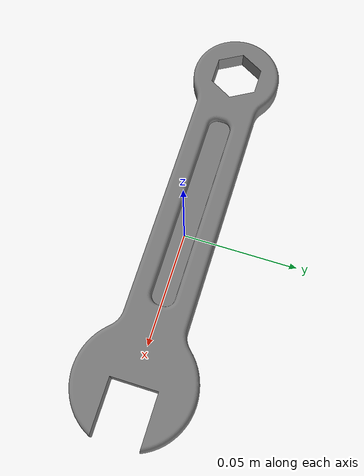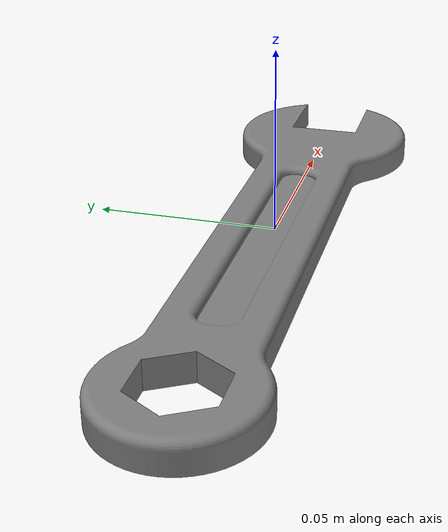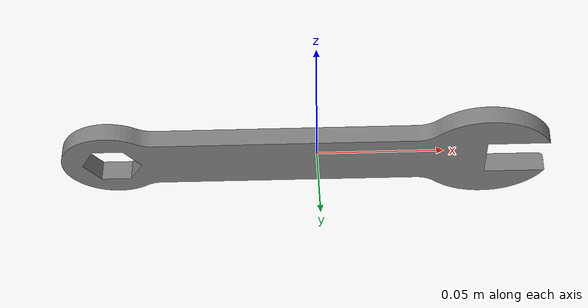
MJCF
<mujoco model="wrench">
  <compiler angle="radian" meshdir="../meshes"/>

  <default>
    <default class="collision">
        <geom group="3"
              contype="1"
              conaffinity="1"
              solref="0.001 1"
              solimp="0.95 0.99 0.0005"
              friction="1.8 0.5 0.0005"
              density="0"/>  <!--  Density set to 0 for collision geoms to avoid affecting dynamics -->
    </default>
  </default>

  <asset>
    <mesh name="body" file="wrench.STL"/>
    <mesh name="c0" file="c0.STL"/>
    <mesh name="c1" file="c1.STL"/>
    <mesh name="c2" file="c2.STL"/>
    <mesh name="c3" file="c3.STL"/>
    <mesh name="c4" file="c4.STL"/>
    <mesh name="c5" file="c5.STL"/>
    <mesh name="c6" file="c6.STL"/>
    <mesh name="c7" file="c7.STL"/>
    <mesh name="c8" file="c8.STL"/>
    <mesh name="c9" file="c9.STL"/>
    <mesh name="c10" file="c10.STL"/>
  </asset>
  <worldbody>
    <body name="base_link" pos="0 0 0">
      <joint name="root" type="free" damping="0.001"/>
        <!-- Inertial properties computed automatically from mesh -->
        <geom
          type="mesh"
          mesh="body"
          mass="0.745"
          contype="0"
          conaffinity="0"
          group="1"/>
          <geom type="mesh" mesh="c0" pos="0 0 0" quat="1 0 0 0" class="collision"/>
          <geom type="mesh" mesh="c1" pos="0 0 0" quat="1 0 0 0" class="collision"/>
          <geom type="mesh" mesh="c2" pos="0 0 0" quat="1 0 0 0" class="collision"/>
          <geom type="mesh" mesh="c3" pos="0 0 0" quat="1 0 0 0" class="collision"/>
          <geom type="mesh" mesh="c4" pos="0 0 0" quat="1 0 0 0" class="collision"/>
          <geom type="mesh" mesh="c5" pos="0 0 0" quat="1 0 0 0" class="collision"/>
          <geom type="mesh" mesh="c6" pos="0 0 0" quat="1 0 0 0" class="collision"/>
          <geom type="mesh" mesh="c7" pos="0 0 0" quat="1 0 0 0" class="collision"/>
          <geom type="mesh" mesh="c8" pos="0 0 0" quat="1 0 0 0" class="collision"/>
          <geom type="mesh" mesh="c9" pos="0 0 0" quat="1 0 0 0" class="collision"/>
          <geom type="mesh" mesh="c10" pos="0 0 0" quat="1 0 0 0" class="collision"/>
    </body>
  </worldbody>

  <!-- State sensors for state estimation simulation -->
  <sensor>
    <subtreecom    name="subtreecom"    body="base_link"/>
    <subtreelinvel name="subtreelinvel" body="base_link"/>
    <subtreeangmom name="subtreeangmom" body="base_link"/>
  </sensor>

</mujoco>
